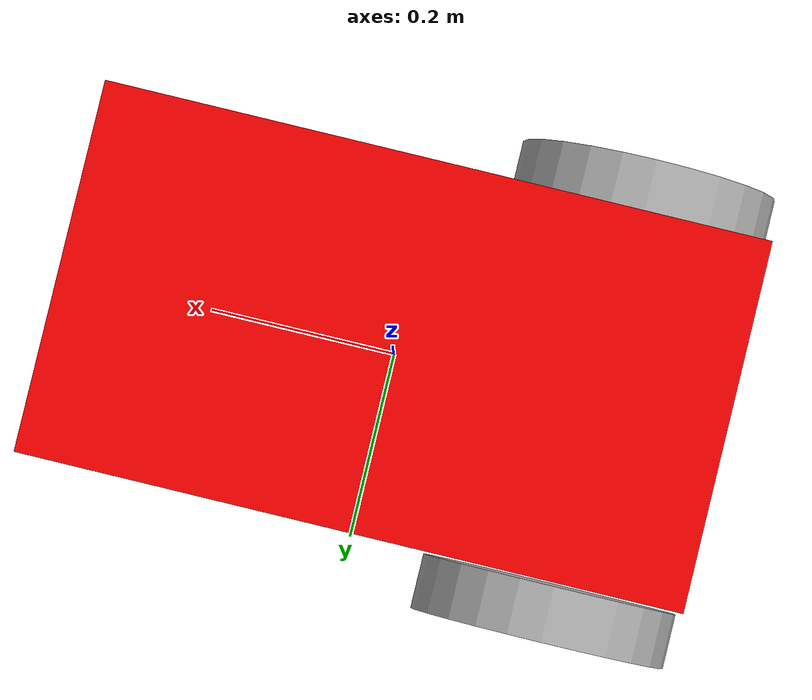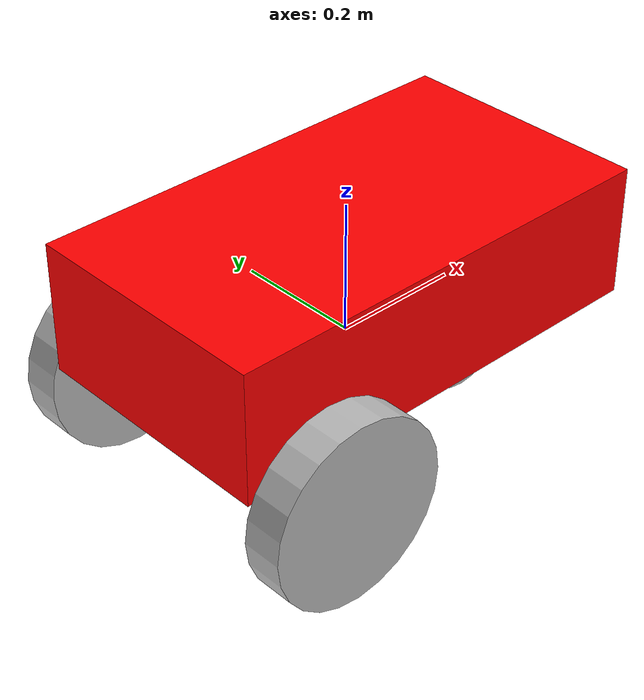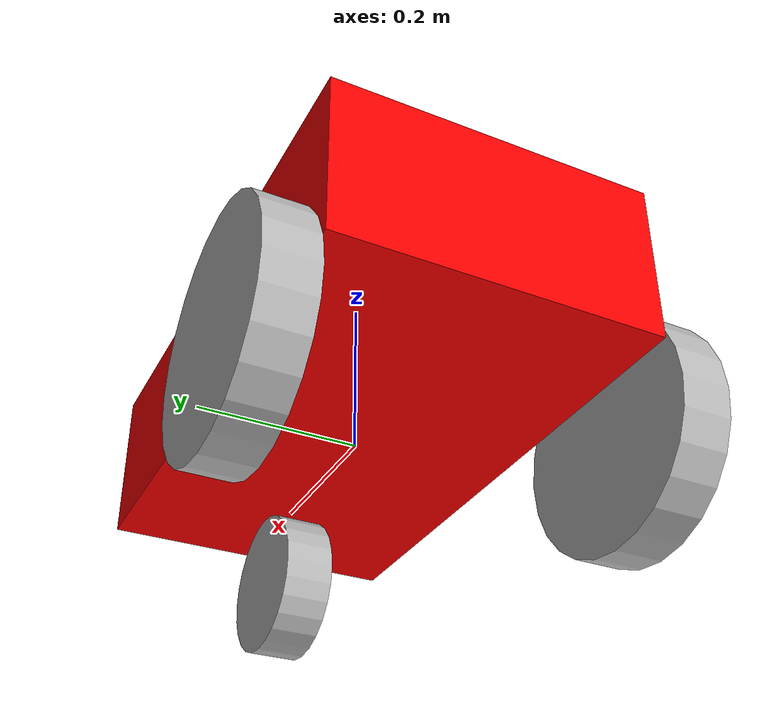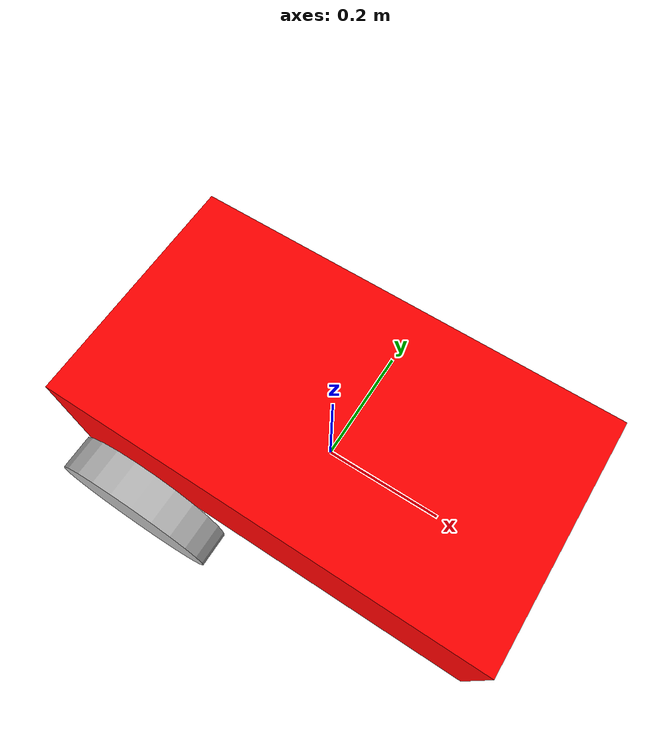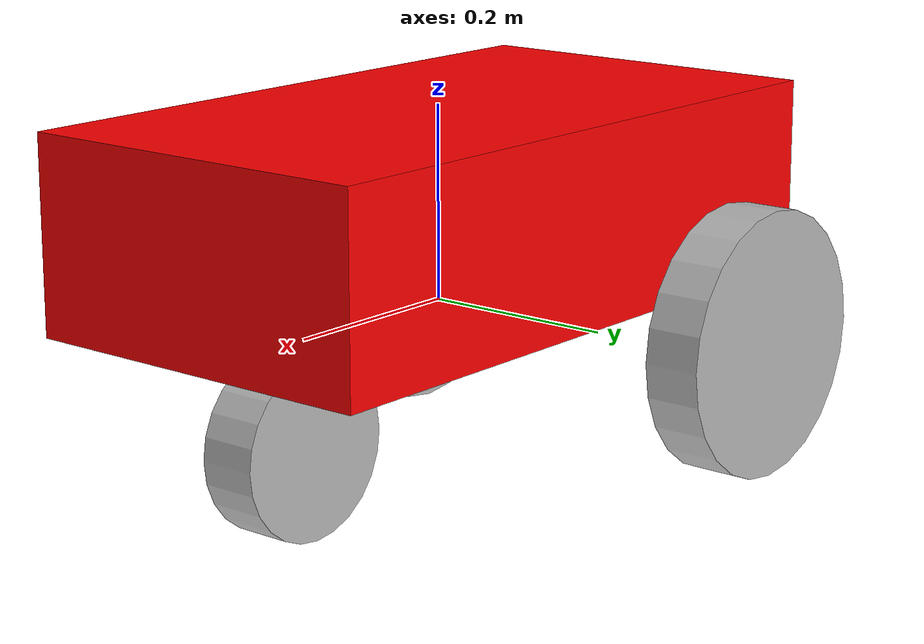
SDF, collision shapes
<?xml version="1.0" ?>
<sdf version="1.5">
  <model name="basic_mobile_bot">
    <static>false</static>

    <!-- ****************** ROBOT BASE FOOTPRINT *************************** -->
    <pose>0.0 0.0 0.0 0.0 0.0 0.0</pose>
    <link name="base_footprint"/>

    <!-- ********************** ROBOT BASE ********************************* -->
    <link name="base_link">
      <collision name="base_collision">
        <pose>0 0 0.1 0 0 0</pose>
        <geometry>
          <box>
            <size>0.70 0.39 0.20</size>
          </box>
        </geometry>
      </collision>
      <visual name="base_visual">
        <pose>0 0 -0.05 1.5707963267949 0 3.141592654</pose>
        <geometry>
          <mesh>
            <uri>model://basic_mobile_bot_description/meshes/robot_base.stl</uri>
            <scale>1.0 1.0 1.0</scale>
          </mesh>
        </geometry>
        <material>
          <ambient>1.0 0.0 0.0 1.0</ambient>
          <diffuse>1.0 0.0 0.0 1.0</diffuse>
          <specular>0.0 0.0 0.0 1.0</specular>
          <emissive>0.0 0.0 0.0 1.0</emissive>
        </material>
      </visual>
    </link>

    <!-- *********************** IMU SENSOR SETUP ************************** -->
    <link name="imu_link">
      <gravity>true</gravity>
      <sensor name="bmb_imu" type="imu">
        <always_on>true</always_on>
        <update_rate>100</update_rate>
        <visualize>true</visualize>
        <imu>
          <orientation>
            <x>
              <noise type="gaussian">
                <mean>0.0</mean>
                <stddev>2e-3</stddev>
              </noise>
            </x>
            <y>
              <noise type="gaussian">
                <mean>0.0</mean>
                <stddev>2e-3</stddev>
              </noise>
            </y>
            <z>
              <noise type="gaussian">
                <mean>0.0</mean>
                <stddev>2e-3</stddev>
              </noise>
            </z>
          </orientation>
          <angular_velocity>
            <x>
              <noise type="gaussian">
                <mean>0.0</mean>
                <stddev>2e-4</stddev>
              </noise>
            </x>
            <y>
              <noise type="gaussian">
                <mean>0.0</mean>
                <stddev>2e-4</stddev>
              </noise>
            </y>
            <z>
              <noise type="gaussian">
                <mean>0.0</mean>
                <stddev>2e-4</stddev>
              </noise>
            </z>
          </angular_velocity>
          <linear_acceleration>
            <x>
              <noise type="gaussian">
                <mean>0.0</mean>
                <stddev>1.7e-2</stddev>
              </noise>
            </x>
            <y>
              <noise type="gaussian">
                <mean>0.0</mean>
                <stddev>1.7e-2</stddev>
              </noise>
            </y>
            <z>
              <noise type="gaussian">
                <mean>0.0</mean>
                <stddev>1.7e-2</stddev>
              </noise>
            </z>
          </linear_acceleration>
        </imu>
        <plugin name="basic_mobile_bot_imu" filename="libgazebo_ros_imu_sensor.so">
          <initial_orientation_as_reference>false</initial_orientation_as_reference>
          <frame_name>imu_link</frame_name>
          <ros>
            <namespace>/imu</namespace>
            <remapping>~/out:=data</remapping>
          </ros>
        </plugin>
      </sensor>
    </link>

    <!-- *********************** GPS SETUP ********************************* -->
    <link name="gps_link">
      <sensor name="bmb_gps" type="gps">
        <always_on>true</always_on>
        <update_rate>10.0</update_rate>
        <gps>
          <position_sensing>
            <horizontal>
              <noise type="gaussian">
                <mean>0.0</mean>
                <stddev>1e-2</stddev>
              </noise>
            </horizontal>
            <vertical>
              <noise type="gaussian">
                <mean>0.0</mean>
                <stddev>1</stddev>
              </noise>
            </vertical>
          </position_sensing>
        </gps>
        <plugin name="basic_mobile_bot_gps" filename="libgazebo_ros_gps_sensor.so">
          <ros>
            <remapping>~/out:=gps/fix</remapping>
          </ros>
        </plugin>
      </sensor>
    </link>

    <!-- *********************** DRIVE WHEELS ****************************** -->
    <link name="rear_left_wheel_link">
      <pose>-0.221 0.23 -0.05 0 1.570796 1.570796</pose>
      <collision name="rear_left_wheel_collision">
        <geometry>
          <cylinder>
            <radius>0.14</radius>
            <length>0.06</length>
          </cylinder>
        </geometry>
      </collision>
      <visual name="rear_left_wheel_visual">
        <geometry>
          <cylinder>
            <radius>0.14</radius>
            <length>0.06</length>
          </cylinder>
        </geometry>
      </visual>
    </link>

    <link name="rear_right_wheel_link">
       <pose>-0.221 -0.23 -0.05 0 1.570796 1.570796</pose>
      <collision name="rear_right_wheel_collision">
        <geometry>
          <cylinder>
            <radius>0.14</radius>
            <length>0.06</length>
          </cylinder>
        </geometry>
      </collision>
      <visual name="rear_right_wheel_visual">
        <geometry>
          <cylinder>
            <radius>0.14</radius>
            <length>0.06</length>
          </cylinder>
        </geometry>
      </visual>
    </link>

    <!-- ************************* STEERING LINK ******************************-->
    <link name="steering_link">
      <pose>0 0 0 0 0 0</pose>
    </link>

    <!-- *********************** STEERING WHEEL ****************************** -->
    <link name="front_steering_wheel_link">
      <pose>0.217 0 -0.1 0 1.570796 1.570796</pose>
      <collision name="front_steering_wheel_collision">
        <geometry>
          <cylinder>
            <radius>0.09</radius>
            <length>0.06</length>
          </cylinder>
        </geometry>
      </collision>
      <visual name="front_steering_wheel_visual">
        <geometry>
          <cylinder>
            <radius>0.09</radius>
            <length>0.06</length>
          </cylinder>
        </geometry>
      </visual>
    </link>

    <!-- ************************ JOINTS *********************************** -->
    <joint name="base_joint" type="fixed">
      <parent>base_footprint</parent>
      <child>base_link</child>
      <pose>0 0 0 0 0 0</pose>
    </joint>

    <joint name="rear_left_wheel_joint" type="revolute">
      <parent>base_link</parent>
      <child>rear_left_wheel_link</child>
      <pose>0 0 0 0 0 0</pose>
      <axis>
        <xyz>0 0 1</xyz>
      </axis>
    </joint>

    <joint name="rear_right_wheel_joint" type="revolute">
      <parent>base_link</parent>
      <child>rear_right_wheel_link</child>
      <pose>0 0 0 0 0 0</pose>
      <axis>
        <xyz>0 0 1</xyz>
      </axis>
    </joint>

    <joint name="steering_joint" type="fixed">
      <parent>base_link</parent>
      <child>steering_link</child>
      <pose>0 0 0 0 0 0</pose>

    </joint>

    <joint name="front_steering_wheel_joint" type="revolute">
      <parent>steering_link</parent>
      <child>front_steering_wheel_link</child>
      <pose>0 0 0 0 0 0</pose>
      <axis>
        <xyz>0 0 1</xyz>
      </axis>
    </joint>

    <joint name="imu_joint" type="fixed">
      <parent>base_link</parent>
      <child>imu_link</child>
      <pose>0 0 0 0 0 0</pose>
    </joint>

    <joint name="gps_joint" type="fixed">
      <parent>base_link</parent>
      <child>gps_link</child>
      <pose>0 0 0 0 0 0</pose>
    </joint>

    <!-- *********************** WHEEL ODOMETRY *************************** -->
    <plugin name="bicycle_model_odometry" filename="libgazebo_ros_diff_drive.so">
      <update_rate>30</update_rate>
      <left_joint>rear_left_wheel_joint</left_joint>
      <right_joint>rear_right_wheel_joint</right_joint>
      <wheel_separation>0.52</wheel_separation>
      <wheel_diameter>0.28</wheel_diameter>
      <max_wheel_torque>20</max_wheel_torque>
      <max_wheel_acceleration>1.0</max_wheel_acceleration>
      <command_topic>cmd_vel</command_topic>
      <publish_odom>true</publish_odom>
      <publish_odom_tf>false</publish_odom_tf>
      <publish_wheel_tf>false</publish_wheel_tf>
      <odometry_topic>odom</odometry_topic>
      <odometry_frame>odom</odometry_frame>
      <robot_base_frame>base_footprint</robot_base_frame>
      <odometry_source>0</odometry_source>
      <ros>
        <remapping>odom:=wheel/odometry</remapping>
      </ros>
    </plugin>

    <!-- *********************** JOINT STATE PUBLISHER ********************* -->
    <plugin name="bicycle_model_joint_state" filename="libgazebo_ros_joint_state_publisher.so">
      <ros>
        <remapping>~/out:=joint_states</remapping>
      </ros>
      <update_rate>30</update_rate>
      <joint_name>rear_left_wheel_joint</joint_name>
      <joint_name>rear_right_wheel_joint</joint_name>
      <joint_name>steering_joint</joint_name>
      <joint_name>front_steering_wheel_joint</joint_name>
    </plugin>

  </model>
</sdf>
